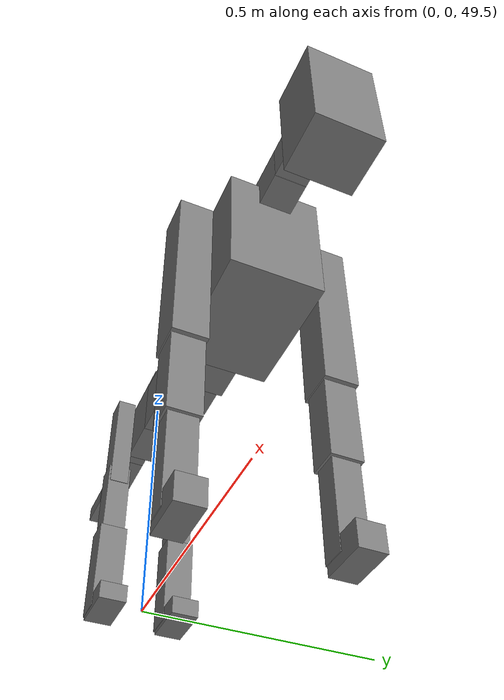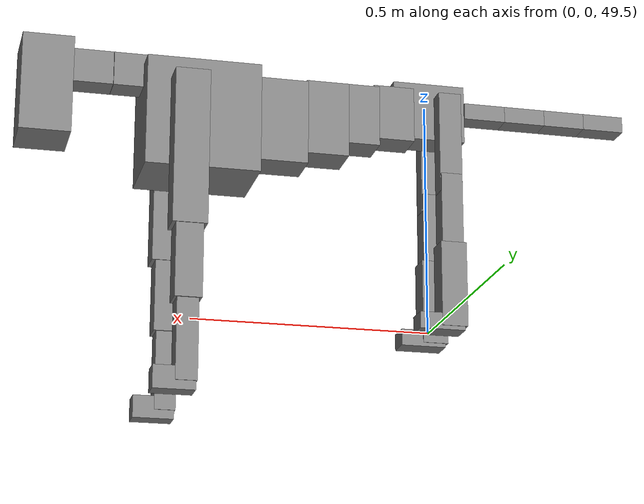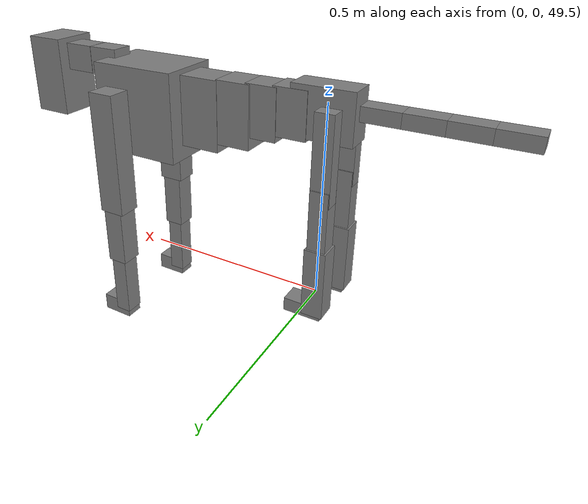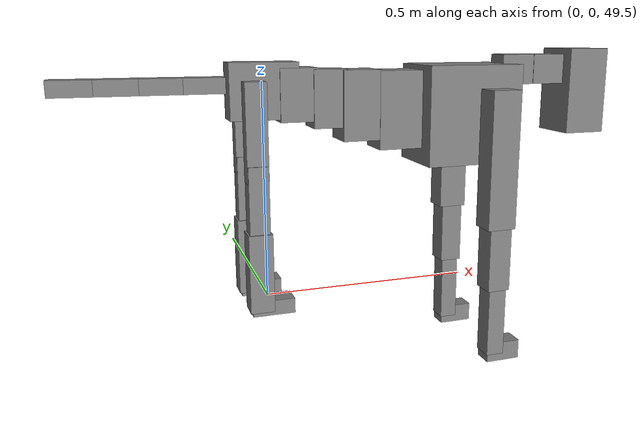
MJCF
<mujoco model="dog">

    <default>
        <joint armature="0.02" stiffness="1" damping="0.2" limited="true"/>
        <geom condim="3" friction="1 0.05 0.05" margin="0.01"/>
        <motor ctrllimited="true" ctrlrange="-1.0 1.0" forcelimited="true" gear="50"/>
    </default>

    <compiler inertiafromgeom="true" angle="radian"/>

    <option timestep="0.016" iterations="50" tolerance="1e-10" solver="Newton" jacobian="dense" cone="pyramidal"/>

    <size nconmax="20000" njmax="60000" nstack="5000000"/>
    <visual>
        <map force="0.1" zfar="30"/>
        <rgba haze="0.15 0.25 0.35 1"/>
        <quality shadowsize="2048"/>
        <global offwidth="800" offheight="800"/>
    </visual>

    <asset>
        <texture type="skybox" builtin="gradient" rgb1="0.3 0.5 0.7" rgb2="0 0 0" width="512" height="512"/>
        <texture name="texplane" type="2d" builtin="checker" rgb1=".2 .3 .4" rgb2=".1 0.15 0.2" width="512" height="512"
                 mark="cross" markrgb=".8 .8 .8"/>
        <texture name="texgeom" type="cube" builtin="flat" mark="cross" width="127" height="1278" rgb1="0.8 0.6 0.4"
                 rgb2="0.8 0.6 0.4" markrgb="1 1 1" random="0.01"/>

        <material name="matplane" reflectance="0.3" texture="texplane" texrepeat="1 1" texuniform="true"/>
        <material name="matgeom" texture="texgeom" texuniform="true" rgba="0.8 0.6 .4 1"/>
    </asset>

    <worldbody>
        <geom name="floor" pos="0 0 0" size="0 0 .25" type="plane" material="matplane" condim="3"/>

        <light directional="false" diffuse=".2 .2 .2" specular="0 0 0" pos="0 0 5" dir="0 0 -1" castshadow="false"/>
        <light mode="targetbodycom" target="torso" directional="false" diffuse=".8 .8 .8" specular="0.3 0.3 0.3"
               pos="0 0 4.0" dir="0 0 -1"/>

        <body name="root" pos="0 0 50">
            <freejoint name="root_1"/>
            <geom type="box" pos="0 0 -0.02" size="0.0774  0.0358  0.063" density="2030"/>

            <body name="spine1" pos="0.054 0 0">
                <joint name="spine1_y" axis="0 1 0" range="0 0.7" limited="true"/>
                <geom type="box" pos="0.02375 0 -0.03" size="0.04375  0.0375  0.05985" density="2030"/>

                <body name="spine2" pos="0.0612 0 0">
                    <joint name="spine2_y" axis="0 1 0" range="-0.15 0.15" limited="true"/>
                    <geom type="box" pos="0.03555  0  -0.04" size="0.04055  0.039  0.06615" density="2030"/>

                    <body name="spine3" pos="0.0730 0 0">
                        <joint name="spine3_y" axis="0 1 0" range="-0.15 0.15" limited="true"/>
                        <geom type="box" pos="0.03555  0  -0.057" size="0.04555  0.0445  0.081" density="2030"/>

                        <body name="spine4" pos="0.0780 0 0">
                            <joint name="spine4_y" axis="0 1 0" range="-0.15 0.15" limited="true"/>
                            <geom type="box" pos="0.05265  0  -0.07" size="0.05265  0.045  0.09135" density="2030"/>

                            <body name="torso" pos="0.1082 0 0">
                                <joint name="torso_y" axis="0 1 0" range="-0.15 0.15" limited="true"/>
                                <geom type="box" pos="0.11925  0  -0.085" size="0.11925  0.085  0.11745"
                                      density="2030"/>

                                <body name="neck1" pos="0.2160  0   0.0180">
                                    <joint name="neck1_y" axis="0 1 0" range="-1.2  -1" limited="true"/>
                                    <geom type="box" pos="0.0423  0  0" size="0.0423  0.03  0.036" density="2325"/>

                                    <body name="neck2" pos="0.0853  0  0">
                                        <joint name="neck2_y" axis="0 1 0" range="0.1  0" limited="true"/>
                                        <geom type="box" pos="0.0423  0  0" size="0.0423  0.03  0.036" density="2325"/>

                                        <body name="head" pos="0.0853  0  0">
                                            <joint name="head_y" axis="0 1 0" range="-0.3  -0.2" limited="true"/>
                                            <geom type="box" pos="0.0531  0  -0.055" size="0.0531  0.06  0.1044"
                                                  density="4030"/>

                                        </body>
                                    </body>
                                </body>

                                <body name="front_shoulder" pos="0.156  0   -0.0480">
                                    <joint name="front_shoulder_y" axis="0 1 0" range="-1 1.5" limited="true"/>
                                    <geom type="box" pos="0 0.13 -0.1367" size="0.0356  0.0304  0.1634" density="1158"/>
                                    <geom type="box" pos="0 -0.13 -0.1367" size="0.0356  0.0304  0.1634"
                                          density="1158"/>

                                    <body name="front_elbow" pos="0  0  -0.2734">
                                        <joint name="front_elbow_y" axis="0 1 0" range="-2 0" limited="true"/>
                                        <geom type="box" pos="0 0.13 -0.0892" size="0.0277  0.0283  0.0892"
                                              density="1081"/>
                                        <geom type="box" pos="0 -0.13 -0.0892" size="0.0277  0.0283  0.0892"
                                              density="1081"/>

                                        <body name="front_wrist" pos="0  0  -0.1785">
                                            <joint name="front_wrist_y" axis="0 1 0" range="-0.2 0" limited="true"/>
                                            <geom type="box" pos="0 0.13 -0.0762" size="0.0220  0.0244  0.0894"
                                                  density="1664"/>
                                            <geom type="box" pos="0 -0.13 -0.0762" size="0.0220  0.0244  0.0894"
                                                  density="1664"/>

                                            <body name="front_finger_end" pos="0  0  -0.1524">
                                                <joint name="front_finger_y" axis="0 1 0" range="-0.4 1"
                                                       limited="true"/>
                                                <geom type="box" pos="0.0232  0.13  -0.0084"
                                                      size="0.0426  0.0232  0.0234" density="1515"/>
                                                <geom type="box" pos="0.0232  -0.13  -0.0084"
                                                      size="0.0426  0.0232  0.0234" density="1515"/>

                                            </body>

                                        </body>
                                    </body>
                                </body>

                            </body>
                        </body>
                    </body>
                </body>
            </body>

            <body name="back_hip" pos="-0.03 0 -0.018">
                <joint name="back_hip_y" axis="0 1 0" range="-1.5 0.3" limited="true"/>
                <geom type="box" pos="0 0.07 -0.0867" size="0.0239  0.0188  0.1095" density="1154"/>
                <geom type="box" pos="0 -0.07 -0.0867" size="0.0239  0.0188  0.1095" density="1154"/>

                <body name="back_knee" pos="0  0  -0.1734">
                    <joint name="back_knee_y" axis="0 1 0" range="0 2.8" limited="true"/>
                    <geom type="box" pos="0 0.07 -0.0733" size="0.0227  0.0224  0.0889" density="1227"/>
                    <geom type="box" pos="0 -0.07 -0.0733" size="0.0227  0.0224  0.0889" density="1227"/>

                    <body name="back_ankle" pos="0  0  -0.1467">
                        <joint name="back_ankle_y" axis="0 1 0" range="-2.2 0" limited="true"/>
                        <geom type="box" pos="0 0.07 -0.0784" size="0.0271  0.0271  0.0897" density="1284"/>
                        <geom type="box" pos="0 -0.07 -0.0784" size="0.0271  0.0271  0.0897" density="1284"/>

                        <body name="back_toe_end" pos="0  0  -0.1568">
                            <joint name="back_toe_y" axis="0 1 0" range="-0.4 1" limited="true"/>
                            <geom type="box" pos="0.0260  0.07  -0.0023" size="0.0477  0.0260  0.0173" density="1515"/>
                            <geom type="box" pos="0.0260  -0.07  -0.0023" size="0.0477  0.0260  0.0173" density="1515"/>

                        </body>
                    </body>
                </body>
            </body>

            <body name="tail1" pos="-0.074 0 -0.006">
                <joint name="tail1_y" axis="0 1 0" range="-0.2 0.2" limited="true"/>
                <geom type="box" pos="-0.0536  0  0" size="0.045  0.025  0.0175" density="1587"/>

                <body name="tail2" pos="-0.09 0 0">
                    <joint name="tail2_y" axis="0 1 0" range="-0.2 0.2" limited="true"/>
                    <geom type="box" pos="-0.0536  0  0" size="0.045  0.025  0.0175" density="1587"/>

                    <body name="tail3" pos="-0.09 0 0">
                        <joint name="tail3_y" axis="0 1 0" range="-0.2 0.2" limited="true"/>
                        <geom type="box" pos="-0.0536  0  0" size="0.045  0.025  0.0175" density="1587"/>

                        <body name="tail4" pos="-0.09 0 0">
                            <joint name="tail4_y" axis="0 1 0" range="-0.2 0.2" limited="true"/>
                            <geom type="box" pos="-0.0536  0  0" size="0.045  0.025  0.0175" density="1587"/>

                        </body>
                    </body>
                </body>
            </body>
        </body>
    </worldbody>

    <actuator>
        <motor joint="spine1_y" forcerange="-150 150     "/>
        <motor joint="spine2_y" forcerange="-150 150     "/>
        <motor joint="spine3_y" forcerange="-150 150     "/>
        <motor joint="spine4_y" forcerange="-150 150     "/>
        <motor joint="torso_y" forcerange="-150 150     "/>
        <motor joint="neck1_y" forcerange="-100 100       "/>
        <motor joint="neck2_y" forcerange="-100 100       "/>
        <motor joint="head_y" forcerange="-150 150       "/>
        <motor joint="front_shoulder_y" forcerange="-145.93 156.72"/>
        <motor joint="front_elbow_y" forcerange="-115.59 190.05"/>
        <motor joint="front_wrist_y" forcerange="-101.69 93.70"/>
        <motor joint="front_finger_y" forcerange="-50.16 33.78"/>
        <motor joint="back_hip_y" forcerange="-246.90 203.25"/>
        <motor joint="back_knee_y" forcerange="-208.88 316.62"/>
        <motor joint="back_angle_y" forcerange="-233.66 99.82"/>
        <motor joint="back_toe_y" forcerange="-43.56 84.38"/>
        <motor joint="tail1_y" forcerange="-50 50     "/>
        <motor joint="tail2_y" forcerange="-50 50     "/>
        <motor joint="tail3_y" forcerange="-50 50     "/>
        <motor joint="tail4_y" forcerange="-50 50     "/>
    </actuator>
</mujoco>
